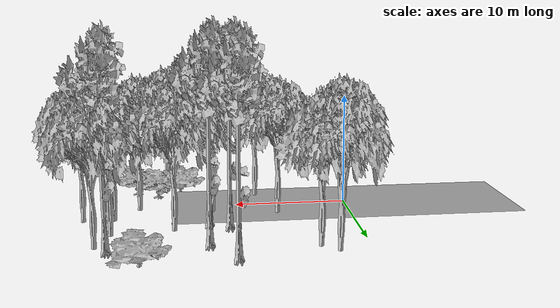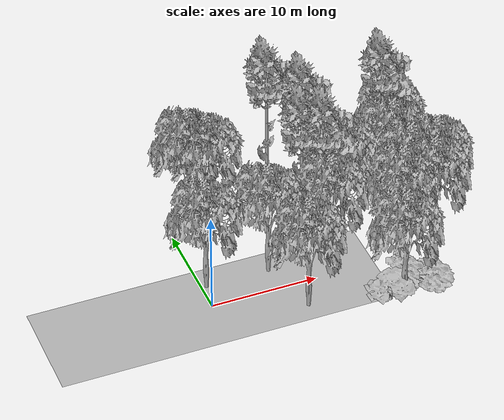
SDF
<sdf version="1.7">
 <world name="default">
  <model name="ground_plane">
   <static>1</static>
   <link name="link">
    <collision name="collision">
     <pose>-50 0 0 0 -0 0</pose>
     <geometry><plane><normal>0 0 1</normal><size>100 100</size></plane></geometry>
     <surface><contact><ode><min_depth>0.01</min_depth><max_vel>0</max_vel></ode></contact></surface>
    </collision>
    <visual name="grass">
     <cast_shadows>0</cast_shadows>
     <geometry>
      <mesh>
       <scale>0.5814285714285714 0.18142857142857144 0.1</scale>
       <uri>file://grass_plane/meshes/grass_plane.dae</uri>
      </mesh>
     </geometry>
    </visual>
   </link>
  </model>
  <model name="Tree 5">
   <static>1</static>
   <pose>12.564143722136464 9.461817279486056 0 1.57079 -0 0</pose>
   <link name="link">
    <collision name="collision">
     <geometry><mesh><scale>3.5 5 3.5</scale><uri>model://tree_9/meshes/tree_9.obj</uri></mesh></geometry>
    </collision>
    <visual name="visual">
     <geometry><mesh><scale>3.5 5 3.5</scale><uri>model://tree_9/meshes/tree_9.obj</uri></mesh></geometry>
    </visual>
   </link>
  </model>
  <model name="Tree 16">
   <static>1</static>
   <pose>20.631699623204923 10.03381341728118 0 1.57079 -0 0</pose>
   <link name="link">
    <collision name="collision">
     <geometry><mesh><scale>3.5 5 3.5</scale><uri>model://tree_9/meshes/tree_9.obj</uri></mesh></geometry>
    </collision>
    <visual name="visual">
     <geometry><mesh><scale>3.5 5 3.5</scale><uri>model://tree_9/meshes/tree_9.obj</uri></mesh></geometry>
    </visual>
   </link>
  </model>
  <model name="Tree 17">
   <static>1</static>
   <pose>21.40325206784756 9.958257367513571 0 1.57079 -0 0</pose>
   <link name="link">
    <collision name="collision">
     <geometry><mesh><scale>3.5 5 3.5</scale><uri>model://tree_2/meshes/tree_2.obj</uri></mesh></geometry>
    </collision>
    <visual name="visual">
     <geometry><mesh><scale>3.5 5 3.5</scale><uri>model://tree_2/meshes/tree_2.obj</uri></mesh></geometry>
    </visual>
   </link>
  </model>
  <model name="Tree 30">
   <static>1</static>
   <pose>23.091639120540904 3.3277202231098038 0 1.57079 -0 0</pose>
   <link name="link">
    <collision name="collision">
     <geometry><mesh><scale>3.5 5 3.5</scale><uri>model://tree_2/meshes/tree_2.obj</uri></mesh></geometry>
    </collision>
    <visual name="visual">
     <geometry><mesh><scale>3.5 5 3.5</scale><uri>model://tree_2/meshes/tree_2.obj</uri></mesh></geometry>
    </visual>
   </link>
  </model>
  <model name="Tree 42">
   <static>1</static>
   <pose>10.476168088568329 12.824928004227115 0 1.57079 -0 0</pose>
   <link name="link">
    <collision name="collision">
     <geometry><mesh><scale>3.5 5 3.5</scale><uri>model://tree_9/meshes/tree_9.obj</uri></mesh></geometry>
    </collision>
    <visual name="visual">
     <geometry><mesh><scale>3.5 5 3.5</scale><uri>model://tree_9/meshes/tree_9.obj</uri></mesh></geometry>
    </visual>
   </link>
  </model>
  <model name="Tree 43">
   <static>1</static>
   <pose>21.66543745899267 0.7565723448376573 0 1.57079 -0 0</pose>
   <link name="link">
    <collision name="collision">
     <geometry><mesh><scale>3.5 5 3.5</scale><uri>model://tree_2/meshes/tree_2.obj</uri></mesh></geometry>
    </collision>
    <visual name="visual">
     <geometry><mesh><scale>3.5 5 3.5</scale><uri>model://tree_2/meshes/tree_2.obj</uri></mesh></geometry>
    </visual>
   </link>
  </model>
  <model name="Tree 52">
   <static>1</static>
   <pose>15.316050708799736 6.453553671390086 0 1.57079 -0 0</pose>
   <link name="link">
    <collision name="collision">
     <geometry><mesh><scale>3.5 5 3.5</scale><uri>model://tree_2/meshes/tree_2.obj</uri></mesh></geometry>
    </collision>
    <visual name="visual">
     <geometry><mesh><scale>3.5 5 3.5</scale><uri>model://tree_2/meshes/tree_2.obj</uri></mesh></geometry>
    </visual>
   </link>
  </model>
  <model name="Tree 57">
   <static>1</static>
   <pose>19.131947994962232 -4.67592118420127 0 1.57079 -0 0</pose>
   <link name="link">
    <collision name="collision">
     <geometry><mesh><scale>4 2.5 4</scale><uri>model://tree_1/meshes/tree_1.obj</uri></mesh></geometry>
    </collision>
    <visual name="visual">
     <geometry><mesh><scale>4 2.5 4</scale><uri>model://tree_1/meshes/tree_1.obj</uri></mesh></geometry>
    </visual>
   </link>
  </model>
  <model name="Tree 60">
   <static>1</static>
   <pose>15.117124253266844 -5.0254955279151705 0 1.57079 -0 0</pose>
   <link name="link">
    <collision name="collision">
     <geometry><mesh><scale>3 2 3</scale><uri>model://tree_3/meshes/tree_3.obj</uri></mesh></geometry>
    </collision>
    <visual name="visual">
     <geometry><mesh><scale>3 2 3</scale><uri>model://tree_3/meshes/tree_3.obj</uri></mesh></geometry>
    </visual>
   </link>
  </model>
  <model name="Tree 68">
   <static>1</static>
   <pose>10.777287990810898 5.217634728292886 0 1.57079 -0 0</pose>
   <link name="link">
    <collision name="collision">
     <geometry><mesh><scale>3.5 5 3.5</scale><uri>model://tree_9/meshes/tree_9.obj</uri></mesh></geometry>
    </collision>
    <visual name="visual">
     <geometry><mesh><scale>3.5 5 3.5</scale><uri>model://tree_9/meshes/tree_9.obj</uri></mesh></geometry>
    </visual>
   </link>
  </model>
  <model name="Tree 73">
   <static>1</static>
   <pose>16.22436430382733 -5.225461672209283 0 1.57079 -0 0</pose>
   <link name="link">
    <collision name="collision">
     <geometry><mesh><scale>3.5 5 3.5</scale><uri>model://tree_2/meshes/tree_2.obj</uri></mesh></geometry>
    </collision>
    <visual name="visual">
     <geometry><mesh><scale>3.5 5 3.5</scale><uri>model://tree_2/meshes/tree_2.obj</uri></mesh></geometry>
    </visual>
   </link>
  </model>
  <model name="Tree 96">
   <static>1</static>
   <pose>0.4024902400783432 2.622668797047467 0 1.57079 -0 0</pose>
   <link name="link">
    <collision name="collision">
     <geometry><mesh><scale>3.5 5 3.5</scale><uri>model://tree_2/meshes/tree_2.obj</uri></mesh></geometry>
    </collision>
    <visual name="visual">
     <geometry><mesh><scale>3.5 5 3.5</scale><uri>model://tree_2/meshes/tree_2.obj</uri></mesh></geometry>
    </visual>
   </link>
  </model>
  <model name="Tree 108">
   <static>1</static>
   <pose>17.14512632645173 -3.412001958674283 0 1.57079 -0 0</pose>
   <link name="link">
    <collision name="collision">
     <geometry><mesh><scale>4 2.5 4</scale><uri>model://tree_1/meshes/tree_1.obj</uri></mesh></geometry>
    </collision>
    <visual name="visual">
     <geometry><mesh><scale>4 2.5 4</scale><uri>model://tree_1/meshes/tree_1.obj</uri></mesh></geometry>
    </visual>
   </link>
  </model>
  <model name="Tree 115">
   <static>1</static>
   <pose>2.6050461089299546 12.616092941403128 0 1.57079 -0 0</pose>
   <link name="link">
    <collision name="collision">
     <geometry><mesh><scale>3.5 5 3.5</scale><uri>model://tree_2/meshes/tree_2.obj</uri></mesh></geometry>
    </collision>
    <visual name="visual">
     <geometry><mesh><scale>3.5 5 3.5</scale><uri>model://tree_2/meshes/tree_2.obj</uri></mesh></geometry>
    </visual>
   </link>
  </model>
  <model name="Tree 116">
   <static>1</static>
   <pose>20.490144851861373 3.2737143950832355 0 1.57079 -0 0</pose>
   <link name="link">
    <collision name="collision">
     <geometry><mesh><scale>3.5 5 3.5</scale><uri>model://tree_2/meshes/tree_2.obj</uri></mesh></geometry>
    </collision>
    <visual name="visual">
     <geometry><mesh><scale>3.5 5 3.5</scale><uri>model://tree_2/meshes/tree_2.obj</uri></mesh></geometry>
    </visual>
   </link>
  </model>
  <model name="Tree 129">
   <static>1</static>
   <pose>18.51247587394522 0.5100562317529516 0 1.57079 -0 0</pose>
   <link name="link">
    <collision name="collision">
     <geometry><mesh><scale>3.5 5 3.5</scale><uri>model://tree_2/meshes/tree_2.obj</uri></mesh></geometry>
    </collision>
    <visual name="visual">
     <geometry><mesh><scale>3.5 5 3.5</scale><uri>model://tree_2/meshes/tree_2.obj</uri></mesh></geometry>
    </visual>
   </link>
  </model>
  <model name="Tree 145">
   <static>1</static>
   <pose>3.874669332847681 11.425652102664827 0 1.57079 -0 0</pose>
   <link name="link">
    <collision name="collision">
     <geometry><mesh><scale>3.5 5 3.5</scale><uri>model://tree_2/meshes/tree_2.obj</uri></mesh></geometry>
    </collision>
    <visual name="visual">
     <geometry><mesh><scale>3.5 5 3.5</scale><uri>model://tree_2/meshes/tree_2.obj</uri></mesh></geometry>
    </visual>
   </link>
  </model>
  <model name="Tree 155">
   <static>1</static>
   <pose>12.060929759113272 1.7050294639952348 0 1.57079 -0 0</pose>
   <link name="link">
    <collision name="collision">
     <geometry><mesh><scale>3.5 5 3.5</scale><uri>model://tree_2/meshes/tree_2.obj</uri></mesh></geometry>
    </collision>
    <visual name="visual">
     <geometry><mesh><scale>3.5 5 3.5</scale><uri>model://tree_2/meshes/tree_2.obj</uri></mesh></geometry>
    </visual>
   </link>
  </model>
  <model name="Tree 158">
   <static>1</static>
   <pose>7.921053096661652 -3.057099754138802 0 1.57079 -0 0</pose>
   <link name="link">
    <collision name="collision">
     <geometry><mesh><scale>3.5 5 3.5</scale><uri>model://tree_2/meshes/tree_2.obj</uri></mesh></geometry>
    </collision>
    <visual name="visual">
     <geometry><mesh><scale>3.5 5 3.5</scale><uri>model://tree_2/meshes/tree_2.obj</uri></mesh></geometry>
    </visual>
   </link>
  </model>
  <model name="Tree 164">
   <static>1</static>
   <pose>20.439176945969365 7.122206308935393 0 1.57079 -0 0</pose>
   <link name="link">
    <collision name="collision">
     <geometry><mesh><scale>3.5 5 3.5</scale><uri>model://tree_2/meshes/tree_2.obj</uri></mesh></geometry>
    </collision>
    <visual name="visual">
     <geometry><mesh><scale>3.5 5 3.5</scale><uri>model://tree_2/meshes/tree_2.obj</uri></mesh></geometry>
    </visual>
   </link>
  </model>
  <model name="Tree 173">
   <static>1</static>
   <pose>6.3478890642741135 2.588126053315687 0 1.57079 -0 0</pose>
   <link name="link">
    <collision name="collision">
     <geometry><mesh><scale>3.5 5 3.5</scale><uri>model://tree_2/meshes/tree_2.obj</uri></mesh></geometry>
    </collision>
    <visual name="visual">
     <geometry><mesh><scale>3.5 5 3.5</scale><uri>model://tree_2/meshes/tree_2.obj</uri></mesh></geometry>
    </visual>
   </link>
  </model>
  <model name="Tree 174">
   <static>1</static>
   <pose>12.490476441664953 4.279336242942854 0 1.57079 -0 0</pose>
   <link name="link">
    <collision name="collision">
     <geometry><mesh><scale>3.5 5 3.5</scale><uri>model://tree_9/meshes/tree_9.obj</uri></mesh></geometry>
    </collision>
    <visual name="visual">
     <geometry><mesh><scale>3.5 5 3.5</scale><uri>model://tree_9/meshes/tree_9.obj</uri></mesh></geometry>
    </visual>
   </link>
  </model>
  <model name="Tree 179">
   <static>1</static>
   <pose>17.82380910255506 13.820027055906085 0 1.57079 -0 0</pose>
   <link name="link">
    <collision name="collision">
     <geometry><mesh><scale>3 2 3</scale><uri>model://tree_3/meshes/tree_3.obj</uri></mesh></geometry>
    </collision>
    <visual name="visual">
     <geometry><mesh><scale>3 2 3</scale><uri>model://tree_3/meshes/tree_3.obj</uri></mesh></geometry>
    </visual>
   </link>
  </model>
 </world>
</sdf>
